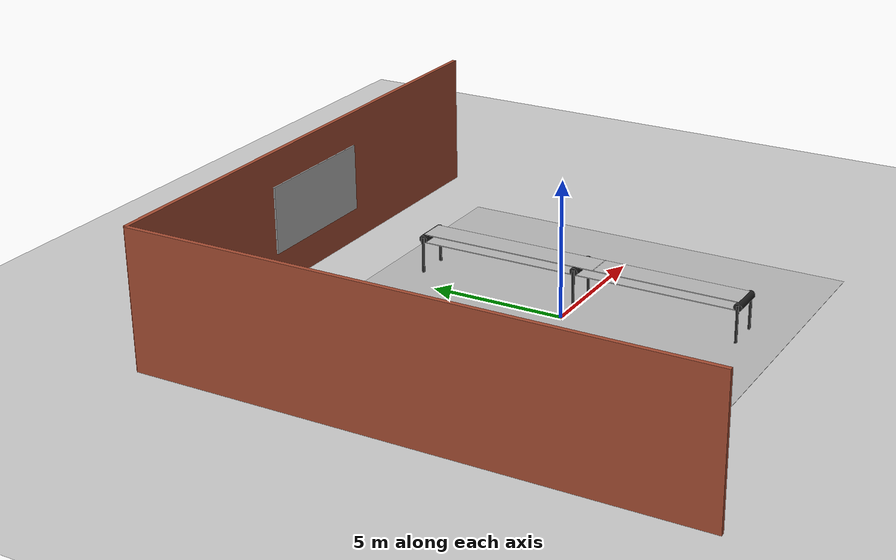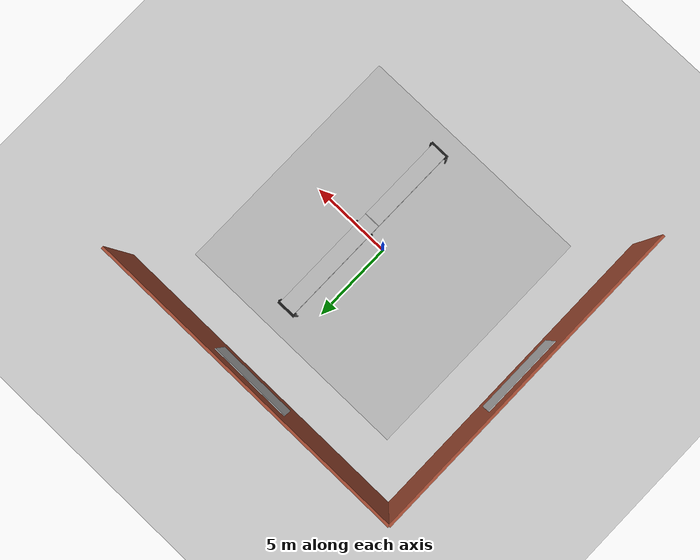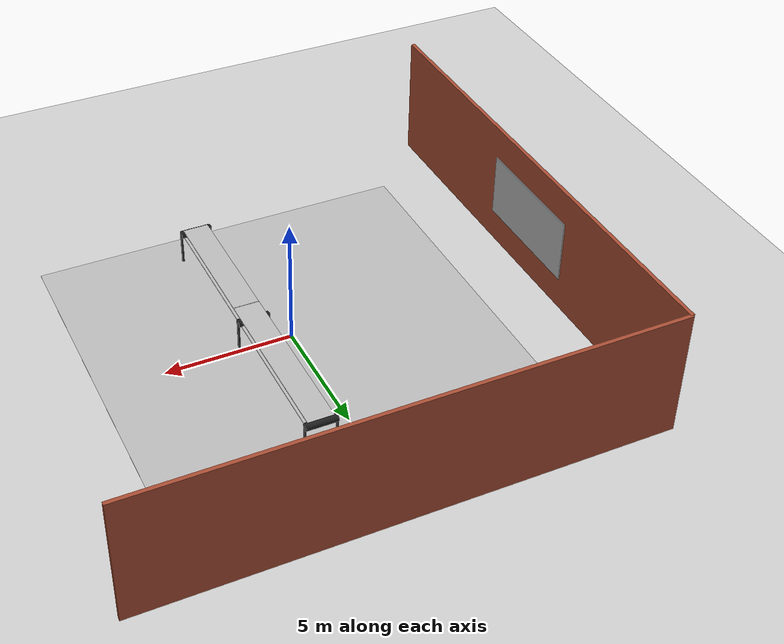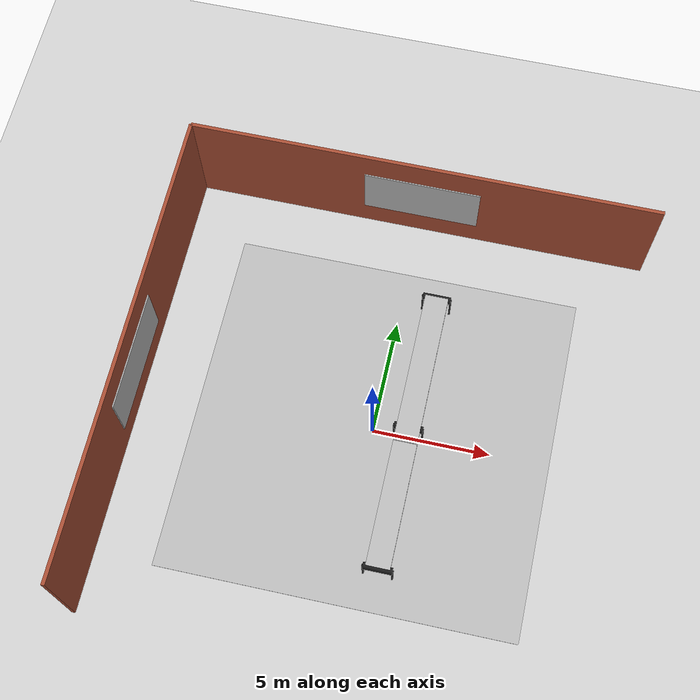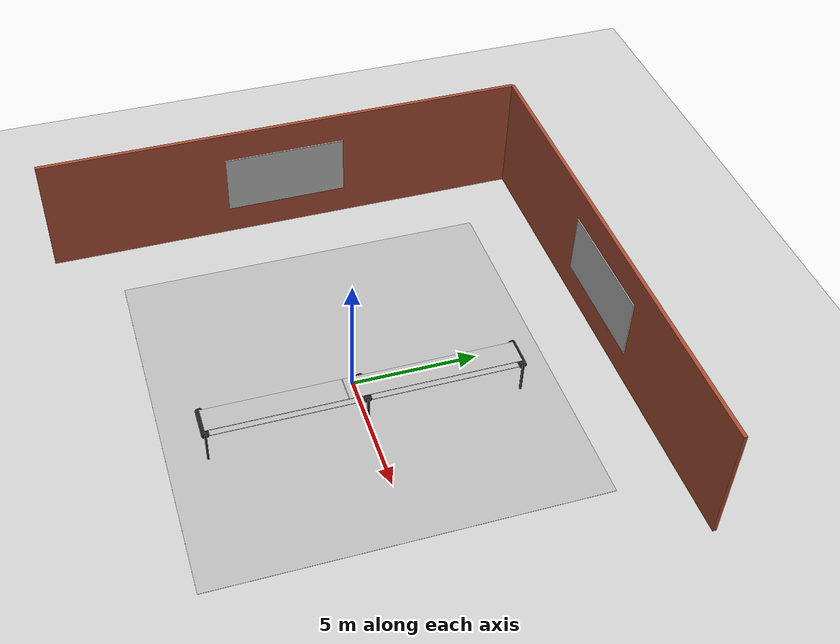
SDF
<sdf version="1.7">
 <world name="default">
  <light name="sun" type="directional">
   <pose>0 0 10 0 -0 0</pose>
   <diffuse>0.8 0.8 0.8 1</diffuse>
   <specular>0.2 0.2 0.2 1</specular>
   <attenuation>
    <range>20</range>
    <constant>0.9</constant>
    <linear>0.01</linear>
    <quadratic>0.001</quadratic>
   </attenuation>
   <direction>-0.5 0.1 -0.9</direction>
   <spot><inner_angle>0</inner_angle><outer_angle>0</outer_angle><falloff>0</falloff></spot>
  </light>
  <model name="ground_plane">
   <static>1</static>
   <link name="link">
    <collision name="collision">
     <geometry><plane><normal>0 0 1</normal><size>100 100</size></plane></geometry>
     <surface>
      <contact><collide_bitmask>65535</collide_bitmask></contact>
      <friction><ode><mu>100</mu><mu2>50</mu2></ode></friction>
     </surface>
    </collision>
    <visual name="visual">
     <cast_shadows>0</cast_shadows>
     <geometry><plane><normal>0 0 1</normal><size>100 100</size></plane></geometry>
     <material>
      <script>
       <uri>/robot_ws/src/r2000_description/materials/textures</uri>
       <uri>/robot_ws/src/r2000_description/materials/scripts</uri>
       <name>Warehouse/Floor</name>
      </script>
     </material>
    </visual>
   </link>
  </model>
  <gravity>0 0 -9.8</gravity>
  <magnetic_field>6e-06 2.3e-05 -4.2e-05</magnetic_field>
  <atmosphere type="adiabatic"/>
  <physics type="ode">
   <max_step_size>0.001</max_step_size>
   <real_time_factor>1</real_time_factor>
   <real_time_update_rate>1000</real_time_update_rate>
  </physics>
  <scene><ambient>0.4 0.4 0.4 1</ambient><background>0.7 0.7 0.7 1</background><shadows>1</shadows></scene>
  <spherical_coordinates>
   <surface_model>EARTH_WGS84</surface_model>
   <latitude_deg>0</latitude_deg>
   <longitude_deg>0</longitude_deg>
   <elevation>0</elevation>
   <heading_deg>0</heading_deg>
  </spherical_coordinates>
  <model name="walls">
   <static>1</static>
   <link name="wall">
    <visual name="wall_visual">
     <pose>-10 0 2.5 0 -0 0</pose>
     <geometry><box><size>0.15 20 5</size></box></geometry>
     <material>
      <script><uri>file://media/materials/scripts/gazebo.material</uri><name>Gazebo/Bricks</name></script>
     </material>
    </visual>
   </link>
   <link name="wall2">
    <visual name="wall2_visual">
     <pose>0 10 2.5 0 -0 1.57</pose>
     <geometry><box><size>0.15 20 5</size></box></geometry>
     <material>
      <script><uri>file://media/materials/scripts/gazebo.material</uri><name>Gazebo/Bricks</name></script>
     </material>
    </visual>
   </link>
   <link name="tmc">
    <visual name="tmc_visual">
     <pose>-9.9 0 2.5 0 -0 0</pose>
     <geometry><box><size>0.05 5 2.5</size></box></geometry>
     <material>
      <script>
       <uri>/robot_ws/src/r2000_description/materials/textures</uri>
       <uri>/robot_ws/src/r2000_description/materials/scripts</uri>
       <name>Tmc/Logo</name>
      </script>
     </material>
    </visual>
   </link>
   <link name="tmc2">
    <visual name="tmc2_visual">
     <pose>0 9.9 2.5 0 -0 1.57</pose>
     <geometry><box><size>0.05 5 2.5</size></box></geometry>
     <material>
      <script>
       <uri>/robot_ws/src/r2000_description/materials/textures</uri>
       <uri>/robot_ws/src/r2000_description/materials/scripts</uri>
       <name>Tmc/Logo</name>
      </script>
     </material>
    </visual>
   </link>
  </model>
  <model name="ferro">
   <static>1</static>
   <link name="square1">
    <visual name="square1_visual">
     <pose>0 0 0.01 0 -0 0</pose>
     <geometry><plane><normal>0 0 1</normal><size>15 15</size></plane></geometry>
     <material>
      <script>
       <uri>/robot_ws/src/r2000_description/materials/textures</uri>
       <uri>/robot_ws/src/r2000_description/materials/scripts</uri>
       <name>Iron/IronFloor</name>
      </script>
     </material>
    </visual>
   </link>
  </model>
  <light name="user_spot_light_0" type="spot">
   <pose>5.58934 -1.46009 1 0 -0 0</pose>
   <diffuse>0.5 0.5 0.5 1</diffuse>
   <specular>0.1 0.1 0.1 1</specular>
   <direction>0 0 -1</direction>
   <attenuation>
    <range>20</range>
    <constant>0.5</constant>
    <linear>0.01</linear>
    <quadratic>0.001</quadratic>
   </attenuation>
   <cast_shadows>0</cast_shadows>
   <spot><inner_angle>0.6</inner_angle><outer_angle>1</outer_angle><falloff>1</falloff></spot>
  </light>
  <light name="user_point_light_0" type="point">
   <pose>-2.58091 -0.317724 1 0 -0 0</pose>
   <diffuse>0.5 0.5 0.5 1</diffuse>
   <specular>0.1 0.1 0.1 1</specular>
   <attenuation>
    <range>20</range>
    <constant>0.5</constant>
    <linear>0.01</linear>
    <quadratic>0.001</quadratic>
   </attenuation>
   <cast_shadows>0</cast_shadows>
   <direction>0 0 -1</direction>
   <spot><inner_angle>0</inner_angle><outer_angle>0</outer_angle><falloff>0</falloff></spot>
  </light>
  <model name="bubba">
   <static>1</static>
   <link name="world"/>
   <link name="knife">
    <pose>0 -0.69 1.505 0 0 -1.57</pose>
    <collision name="knife_collision"><geometry><box><size>0.03 1 0.03</size></box></geometry></collision>
    <visual name="knife_visual">
     <geometry><box><size>0.03 1 0.03</size></box></geometry>
     <material>
      <script>
       <uri>/robot_ws/src/r2000_description/materials</uri>
       <uri>/robot_ws/src/r2000_description/materials/scripts</uri>
       <name>Conveyor/Belt</name>
      </script>
     </material>
    </visual>
    <sensor name="knife_contact" type="contact">
     <contact><collision>knife_collision</collision><topic>__default_topic__</topic></contact>
     <plugin name="knife_gazebo_ros_bumper_controller" filename="libgazebo_ros_bumper.so">
      <alwaysOn>1</alwaysOn>
      <updateRate>1</updateRate>
      <bumperTopicName>knife_bumper</bumperTopicName>
      <frameName>world</frameName>
      <robotNamespace>/</robotNamespace>
     </plugin>
    </sensor>
   </link>
   <link name="belt1">
    <pose>0 0 1.5 0 -0 0</pose>
    <collision name="base_link_collision">
     <geometry><box><size>1 12 0.03</size></box></geometry>
     <surface><friction><ode><mu>1</mu><mu2>1</mu2></ode></friction></surface>
    </collision>
    <visual name="base_link_visual">
     <geometry><box><size>1 12 0.03</size></box></geometry>
     <material>
      <script>
       <uri>/robot_ws/src/r2000_description/materials</uri>
       <uri>/robot_ws/src/r2000_description/materials/scripts</uri>
       <name>Conveyor/Belt</name>
      </script>
     </material>
    </visual>
    <static>1</static>
   </link>
   <link name="belt2">
    <pose>0 0 1.2 0 -0 0</pose>
    <collision name="base_link_collision"><geometry><box><size>1 12 0.03</size></box></geometry></collision>
    <visual name="base_link_visual">
     <geometry><box><size>1 12 0.03</size></box></geometry>
     <material>
      <script>
       <uri>/robot_ws/src/r2000_description/materials</uri>
       <uri>/robot_ws/src/r2000_description/materials/scripts</uri>
       <name>Conveyor/Belt</name>
      </script>
     </material>
    </visual>
    <static>1</static>
   </link>
   <link name="drum1">
    <pose>0 6 1.35 1.5708 -0 1.5708</pose>
    <collision name="drum1_collision">
     <geometry><cylinder><radius>0.15</radius><length>1.2</length></cylinder></geometry>
    </collision>
    <visual name="drum1_visual">
     <geometry><cylinder><radius>0.15</radius><length>1.2</length></cylinder></geometry>
     <material>
      <script><uri>file://media/materials/scripts/gazebo.material</uri><name>Gazebo/FlatBlack</name></script>
     </material>
    </visual>
    <static>1</static>
   </link>
   <joint name="drum_joint1" type="fixed">
    <pose>0 6 0 0 -0 0</pose>
    <parent>belt</parent>
    <child>drum1</child>
    <axis><xyz expressed_in="__model__">0 1 0</xyz><limit><lower>-1e+16</lower><upper>1e+16</upper></limit></axis>
   </joint>
   <link name="drum2">
    <pose>0 -6 1.35 1.5708 -0 1.5708</pose>
    <collision name="drum2_collision">
     <geometry><cylinder><radius>0.15</radius><length>1.2</length></cylinder></geometry>
    </collision>
    <visual name="drum2_visual">
     <geometry><cylinder><radius>0.15</radius><length>1.2</length></cylinder></geometry>
     <material>
      <script><uri>file://media/materials/scripts/gazebo.material</uri><name>Gazebo/FlatBlack</name></script>
     </material>
    </visual>
    <static>1</static>
   </link>
   <joint name="drum_joint2" type="fixed">
    <pose>0 -6 0 0 -0 0</pose>
    <parent>belt</parent>
    <child>drum2</child>
    <axis><xyz expressed_in="__model__">0 1 0</xyz><limit><lower>-1e+16</lower><upper>1e+16</upper></limit></axis>
   </joint>
   <link name="drum3">
    <pose>0 0 1.35 1.5708 -0 1.5708</pose>
    <collision name="drum2_collision">
     <geometry><cylinder><radius>0.15</radius><length>1.2</length></cylinder></geometry>
    </collision>
    <visual name="drum2_visual">
     <geometry><cylinder><radius>0.15</radius><length>1.2</length></cylinder></geometry>
     <material>
      <script><uri>file://media/materials/scripts/gazebo.material</uri><name>Gazebo/FlatBlack</name></script>
     </material>
    </visual>
    <static>1</static>
   </link>
   <link name="leg1">
    <pose>-0.6 0 0.75 0 -0 0</pose>
    <collision name="leg1_collision"><geometry><box><size>0.08 0.08 1.35</size></box></geometry></collision>
    <visual name="leg1_visual">
     <geometry><box><size>0.08 0.08 1.35</size></box></geometry>
     <material>
      <script><uri>file://media/materials/scripts/gazebo.material</uri><name>Gazebo/FlatBlack</name></script>
     </material>
    </visual>
    <static>1</static>
   </link>
   <link name="leg2">
    <pose>0.6 0 0.75 0 -0 0</pose>
    <collision name="leg2_collision"><geometry><box><size>0.08 0.08 1.35</size></box></geometry></collision>
    <visual name="leg2_visual">
     <geometry><box><size>0.08 0.08 1.35</size></box></geometry>
     <material>
      <script><uri>file://media/materials/scripts/gazebo.material</uri><name>Gazebo/FlatBlack</name></script>
     </material>
    </visual>
    <static>1</static>
   </link>
   <link name="leg3">
    <pose>-0.6 6 0.75 0 -0 0</pose>
    <collision name="leg1_collision"><geometry><box><size>0.08 0.08 1.35</size></box></geometry></collision>
    <visual name="leg1_visual">
     <geometry><box><size>0.08 0.08 1.35</size></box></geometry>
     <material>
      <script><uri>file://media/materials/scripts/gazebo.material</uri><name>Gazebo/FlatBlack</name></script>
     </material>
    </visual>
    <static>1</static>
   </link>
   <link name="leg4">
    <pose>0.6 6 0.75 0 -0 0</pose>
    <collision name="leg2_collision"><geometry><box><size>0.08 0.08 1.35</size></box></geometry></collision>
    <visual name="leg2_visual">
     <geometry><box><size>0.08 0.08 1.35</size></box></geometry>
     <material>
      <script><uri>file://media/materials/scripts/gazebo.material</uri><name>Gazebo/FlatBlack</name></script>
     </material>
    </visual>
    <static>1</static>
   </link>
   <link name="leg5">
    <pose>-0.6 -6 0.75 0 -0 0</pose>
    <collision name="leg1_collision"><geometry><box><size>0.08 0.08 1.35</size></box></geometry></collision>
    <visual name="leg1_visual">
     <geometry><box><size>0.08 0.08 1.35</size></box></geometry>
     <material>
      <script><uri>file://media/materials/scripts/gazebo.material</uri><name>Gazebo/FlatBlack</name></script>
     </material>
    </visual>
    <static>1</static>
   </link>
   <link name="leg6">
    <pose>0.6 -6 0.75 0 -0 0</pose>
    <collision name="leg2_collision"><geometry><box><size>0.08 0.08 1.35</size></box></geometry></collision>
    <visual name="leg2_visual">
     <geometry><box><size>0.08 0.08 1.35</size></box></geometry>
     <material>
      <script><uri>file://media/materials/scripts/gazebo.material</uri><name>Gazebo/FlatBlack</name></script>
     </material>
    </visual>
    <static>1</static>
   </link>
   <link name="base_link">
    <pose>0.4 0 0 0 -1.57 0</pose>
    <collision name="base_collision">
     <geometry>
      <polyline>
       <point>1.5 -6</point>
       <point>0 -3</point>
       <point>0 3</point>
       <point>1.5 6</point>
       <point>1.5 -6</point>
       <height>0.8</height>
      </polyline>
     </geometry>
     <surface><friction><ode><mu>1</mu><mu2>1</mu2></ode></friction></surface>
    </collision>
    <static>1</static>
   </link>
   <joint name="base_conveyor_joint" type="fixed">
    <pose>0 0 1.5 0 -0 0</pose>
    <parent>base_link</parent>
    <child>belt</child>
    <axis><xyz expressed_in="__model__">0 0 0</xyz><limit><lower>-1e+16</lower><upper>1e+16</upper></limit></axis>
   </joint>
   <pose>1.5 0 0 0 -0 0</pose>
  </model>
 </world>
</sdf>
